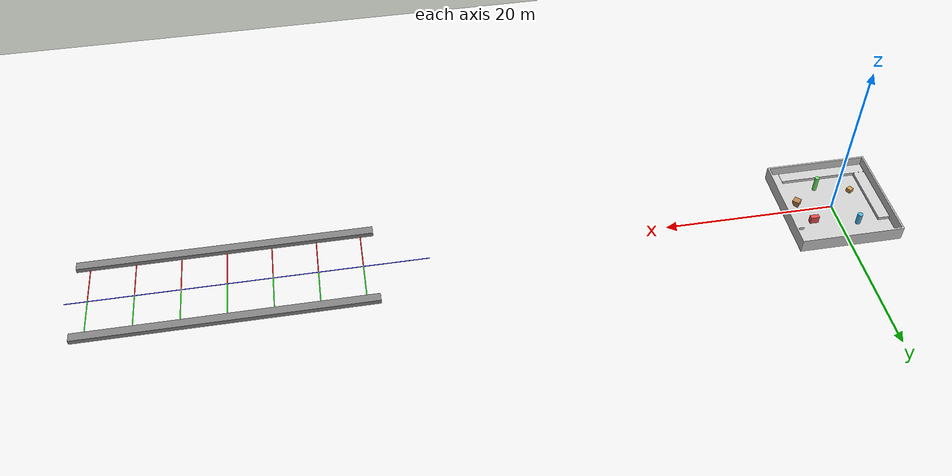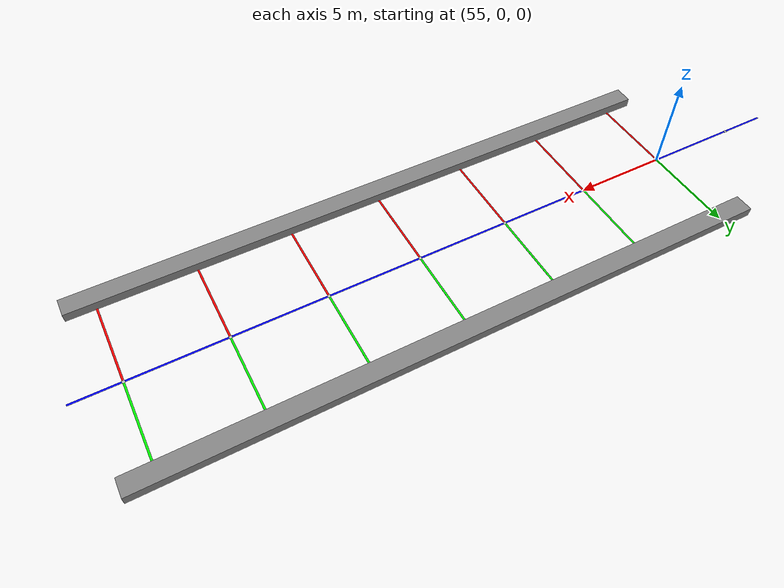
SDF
<?xml version="1.0"?>
<sdf version="1.6">
  <world name="combined_world">

    <!-- Physics -->
    <physics name="default_physics" default="0" type="ode">
      <max_step_size>0.001</max_step_size>
      <real_time_factor>1</real_time_factor>
      <real_time_update_rate>1000</real_time_update_rate>
    </physics>

    <!-- Lighting -->
    <include>
      <uri>model://sun</uri>
    </include>

    <!-- Ground Plane -->
    <model name="ground_plane">
      <static>true</static>
      <link name="link">
        <collision name="collision">
          <geometry>
            <plane>
              <normal>0 0 1</normal>
              <size>200 200</size>
            </plane>
          </geometry>
          <surface>
            <friction>
              <ode>
                <mu>100</mu>
                <mu2>50</mu2>
              </ode>
            </friction>
          </surface>
        </collision>
        <visual name="visual">
          <cast_shadows>false</cast_shadows>
          <geometry>
            <plane>
              <normal>0 0 1</normal>
              <size>200 200</size>
            </plane>
          </geometry>
          <material>
            <script>
              <uri>file://media/materials/scripts/gazebo.material</uri>
              <name>Gazebo/White</name>
            </script>
          </material>
        </visual>
      </link>
    </model>

    <!-- ELEMENTS FROM MY_ROBOT_CONTROLLER PROJECT -->
    <!-- Position: Original (around 0,0)          -->

    <!-- Warehouse Map -->
    <model name="warehouse_map">
      <static>true</static>
      <pose>0 0 0.002 0 0 0</pose>
      <link name="link">
        <collision name="collision">
          <geometry>
            <mesh>
              <uri>file:///home/wayay/mixed/src/my_robot_controller/models/my_map.stl</uri>
              <scale>1 1 1</scale>
            </mesh>
          </geometry>
        </collision>
        <visual name="visual">
          <geometry>
            <mesh>
              <uri>file:///home/wayay/mixed/src/my_robot_controller/models/my_map.stl</uri>
              <scale>1 1 1</scale>
            </mesh>
          </geometry>
          <material>
            <ambient>0.5 0.5 0.5 1.0</ambient>
            <diffuse>0.8 0.8 0.8 1.0</diffuse>
          </material>
        </visual>
      </link>
    </model>

    <!-- Obstacles from my_robot_controller -->
    <model name="obstacle_box_1">
      <static>true</static>
      <pose>3 2 0.5 0 0 0</pose>
      <link name="link">
        <collision name="collision">
          <geometry>
            <box><size>1.0 0.5 1.0</size></box>
          </geometry>
        </collision>
        <visual name="visual">
          <geometry>
            <box><size>1.0 0.5 1.0</size></box>
          </geometry>
          <material>
            <ambient>0.8 0.2 0.2 1</ambient>
            <diffuse>0.9 0.3 0.3 1</diffuse>
          </material>
        </visual>
      </link>
    </model>

    <model name="obstacle_cylinder_1">
      <static>true</static>
      <pose>-2 3 0.75 0 0 0</pose>
      <link name="link">
        <collision name="collision">
          <geometry>
            <cylinder>
              <radius>0.3</radius>
              <length>1.5</length>
            </cylinder>
          </geometry>
        </collision>
        <visual name="visual">
          <geometry>
            <cylinder>
              <radius>0.3</radius>
              <length>1.5</length>
            </cylinder>
          </geometry>
          <material>
            <ambient>0.2 0.6 0.8 1</ambient>
            <diffuse>0.3 0.7 0.9 1</diffuse>
          </material>
        </visual>
      </link>
    </model>

    <model name="obstacle_box_2">
      <static>true</static>
      <pose>-3 -2 0.3 0 0 0.5</pose>
      <link name="link">
        <collision name="collision">
          <geometry>
            <box><size>0.6 0.6 0.6</size></box>
          </geometry>
        </collision>
        <visual name="visual">
          <geometry>
            <box><size>0.6 0.6 0.6</size></box>
          </geometry>
          <material>
            <ambient>0.7 0.5 0.2 1</ambient>
            <diffuse>0.8 0.6 0.3 1</diffuse>
          </material>
        </visual>
      </link>
    </model>

    <model name="obstacle_cylinder_2">
      <static>true</static>
      <pose>1 -3 1.0 0 0 0</pose>
      <link name="link">
        <collision name="collision">
          <geometry>
            <cylinder>
              <radius>0.25</radius>
              <length>2.0</length>
            </cylinder>
          </geometry>
        </collision>
        <visual name="visual">
          <geometry>
            <cylinder>
              <radius>0.25</radius>
              <length>2.0</length>
            </cylinder>
          </geometry>
          <material>
            <ambient>0.3 0.8 0.3 1</ambient>
            <diffuse>0.4 0.9 0.4 1</diffuse>
          </material>
        </visual>
      </link>
    </model>

    <model name="obstacle_box_3">
      <static>true</static>
      <pose>4 -1 0.4 0 0 0.8</pose>
      <link name="link">
        <collision name="collision">
          <geometry>
            <box><size>0.8 0.8 0.8</size></box>
          </geometry>
        </collision>
        <visual name="visual">
          <geometry>
            <box><size>0.8 0.8 0.8</size></box>
          </geometry>
          <material>
            <ambient>0.6 0.4 0.2 1</ambient>
            <diffuse>0.7 0.5 0.3 1</diffuse>
          </material>
        </visual>
      </link>
    </model>

    <!-- ELEMENTS FROM BLUE_LINE_FOLLOWER PROJECT -->
    <!-- Position: Shifted by +50 on X axis       -->

    <!-- Blue Line Track - Straight -->
    <model name="blue_line_straight">
      <static>true</static>
      <link name="link">
        <pose>67.5 0 0.001 0 0 0</pose>
        <visual name="visual">
          <geometry>
            <box>
              <size>40 0.1 0.001</size>
            </box>
          </geometry>
          <material>
            <ambient>0 0 1 1</ambient>
            <diffuse>0 0 1 1</diffuse>
            <specular>0.1 0.1 0.3 1</specular>
            <emissive>0 0 0.5 1</emissive>
          </material>
        </visual>
      </link>
    </model>

    <!-- Delivery zones -->
    <model name="delivery_zone_left">
      <static>true</static>
      <link name="link">
        <pose>70 5 0.075 0 0 0</pose>
        <visual name="visual">
          <geometry>
            <box>
              <size>33 1 0.75</size>
            </box>
          </geometry>
          <material>
            <ambient>0.5 0.5 0.5 1</ambient>
            <diffuse>0.5 0.5 0.5 1</diffuse>
            <specular>0.2 0.2 0.2 1</specular>
          </material>
        </visual>
      </link>
    </model>

    <model name="delivery_zone_right">
      <static>true</static>
      <link name="link">
        <pose>70 -5 0.075 0 0 0</pose>
        <visual name="visual">
          <geometry>
            <box>
              <size>33 1 0.75</size>
            </box>
          </geometry>
          <material>
            <ambient>0.5 0.5 0.5 1</ambient>
            <diffuse>0.5 0.5 0.5 1</diffuse>
            <specular>0.2 0.2 0.2 1</specular>
          </material>
        </visual>
      </link>
    </model>

    <!-- Red Lines -->
    <model name="Red_1">
      <static>true</static>
      <link name="link">
        <pose>55 -2.5 0.001 0 0 1.5708</pose>
        <visual name="visual">
          <geometry>
            <box>
              <size>5 0.1 0.001</size>
            </box>
          </geometry>
          <material>
            <ambient>1 0 0 1</ambient>
            <diffuse>1 0 0 1</diffuse>
            <specular>0.3 0.1 0.1 1</specular>
            <emissive>0.5 0 0 1</emissive>
          </material>
        </visual>
      </link>
    </model>

    <model name="Red_2">
      <static>true</static>
      <link name="link">
        <pose>60 -2.5 0.001 0 0 1.5708</pose>
        <visual name="visual">
          <geometry>
            <box>
              <size>5 0.1 0.001</size>
            </box>
          </geometry>
          <material>
            <ambient>1 0 0 1</ambient>
            <diffuse>1 0 0 1</diffuse>
            <specular>0.3 0.1 0.1 1</specular>
            <emissive>0.5 0 0 1</emissive>
          </material>
        </visual>
      </link>
    </model>

    <model name="Red_3">
      <static>true</static>
      <link name="link">
        <pose>65 -2.5 0.001 0 0 1.5708</pose>
        <visual name="visual">
          <geometry>
            <box>
              <size>5 0.1 0.001</size>
            </box>
          </geometry>
          <material>
            <ambient>1 0 0 1</ambient>
            <diffuse>1 0 0 1</diffuse>
            <specular>0.3 0.1 0.1 1</specular>
            <emissive>0.5 0 0 1</emissive>
          </material>
        </visual>
      </link>
    </model>

    <model name="Red_4">
      <static>true</static>
      <link name="link">
        <pose>70 -2.5 0.001 0 0 1.5708</pose>
        <visual name="visual">
          <geometry>
            <box>
              <size>5 0.1 0.001</size>
            </box>
          </geometry>
          <material>
            <ambient>1 0 0 1</ambient>
            <diffuse>1 0 0 1</diffuse>
            <specular>0.3 0.1 0.1 1</specular>
            <emissive>0.5 0 0 1</emissive>
          </material>
        </visual>
      </link>
    </model>

    <model name="Red_5">
      <static>true</static>
      <link name="link">
        <pose>75 -2.5 0.001 0 0 1.5708</pose>
        <visual name="visual">
          <geometry>
            <box>
              <size>5 0.1 0.001</size>
            </box>
          </geometry>
          <material>
            <ambient>1 0 0 1</ambient>
            <diffuse>1 0 0 1</diffuse>
            <specular>0.3 0.1 0.1 1</specular>
            <emissive>0.5 0 0 1</emissive>
          </material>
        </visual>
      </link>
    </model>

    <model name="Red_6">
      <static>true</static>
      <link name="link">
        <pose>80 -2.5 0.001 0 0 1.5708</pose>
        <visual name="visual">
          <geometry>
            <box>
              <size>5 0.1 0.001</size>
            </box>
          </geometry>
          <material>
            <ambient>1 0 0 1</ambient>
            <diffuse>1 0 0 1</diffuse>
            <specular>0.3 0.1 0.1 1</specular>
            <emissive>0.5 0 0 1</emissive>
          </material>
        </visual>
      </link>
    </model>

    <model name="Red_7">
      <static>true</static>
      <link name="link">
        <pose>85 -2.5 0.001 0 0 1.5708</pose>
        <visual name="visual">
          <geometry>
            <box>
              <size>5 0.1 0.001</size>
            </box>
          </geometry>
          <material>
            <ambient>1 0 0 1</ambient>
            <diffuse>1 0 0 1</diffuse>
            <specular>0.3 0.1 0.1 1</specular>
            <emissive>0.5 0 0 1</emissive>
          </material>
        </visual>
      </link>
    </model>

    <!-- Green Lines -->
    <model name="Green_1">
      <static>true</static>
      <link name="link">
        <pose>55 2.5 0.001 0 0 1.5708</pose>
        <visual name="visual">
          <geometry>
            <box>
              <size>5 0.1 0.001</size>
            </box>
          </geometry>
          <material>
            <ambient>0 1 0 1</ambient>
            <diffuse>0 1 0 1</diffuse>
            <specular>0.1 0.3 0.1 1</specular>
            <emissive>0 0.5 0 1</emissive>
          </material>
        </visual>
      </link>
    </model>

    <model name="Green_2">
      <static>true</static>
      <link name="link">
        <pose>60 2.5 0.001 0 0 1.5708</pose>
        <visual name="visual">
          <geometry>
            <box>
              <size>5 0.1 0.001</size>
            </box>
          </geometry>
          <material>
            <ambient>0 1 0 1</ambient>
            <diffuse>0 1 0 1</diffuse>
            <specular>0.1 0.3 0.1 1</specular>
            <emissive>0 0.5 0 1</emissive>
          </material>
        </visual>
      </link>
    </model>

    <model name="Green_3">
      <static>true</static>
      <link name="link">
        <pose>65 2.5 0.001 0 0 1.5708</pose>
        <visual name="visual">
          <geometry>
            <box>
              <size>5 0.1 0.001</size>
            </box>
          </geometry>
          <material>
            <ambient>0 1 0 1</ambient>
            <diffuse>0 1 0 1</diffuse>
            <specular>0.1 0.3 0.1 1</specular>
            <emissive>0 0.5 0 1</emissive>
          </material>
        </visual>
      </link>
    </model>

    <model name="Green_4">
      <static>true</static>
      <link name="link">
        <pose>70 2.5 0.001 0 0 1.5708</pose>
        <visual name="visual">
          <geometry>
            <box>
              <size>5 0.1 0.001</size>
            </box>
          </geometry>
          <material>
            <ambient>0 1 0 1</ambient>
            <diffuse>0 1 0 1</diffuse>
            <specular>0.1 0.3 0.1 1</specular>
            <emissive>0 0.5 0 1</emissive>
          </material>
        </visual>
      </link>
    </model>

    <model name="Green_5">
      <static>true</static>
      <link name="link">
        <pose>75 2.5 0.001 0 0 1.5708</pose>
        <visual name="visual">
          <geometry>
            <box>
              <size>5 0.1 0.001</size>
            </box>
          </geometry>
          <material>
            <ambient>0 1 0 1</ambient>
            <diffuse>0 1 0 1</diffuse>
            <specular>0.1 0.3 0.1 1</specular>
            <emissive>0 0.5 0 1</emissive>
          </material>
        </visual>
      </link>
    </model>

    <model name="Green_6">
      <static>true</static>
      <link name="link">
        <pose>80 2.5 0.001 0 0 1.5708</pose>
        <visual name="visual">
          <geometry>
            <box>
              <size>5 0.1 0.001</size>
            </box>
          </geometry>
          <material>
            <ambient>0 1 0 1</ambient>
            <diffuse>0 1 0 1</diffuse>
            <specular>0.1 0.3 0.1 1</specular>
            <emissive>0 0.5 0 1</emissive>
          </material>
        </visual>
      </link>
    </model>

    <model name="Green_7">
      <static>true</static>
      <link name="link">
        <pose>85 2.5 0.001 0 0 1.5708</pose>
        <visual name="visual">
          <geometry>
            <box>
              <size>5 0.1 0.001</size>
            </box>
          </geometry>
          <material>
            <ambient>0 1 0 1</ambient>
            <diffuse>0 1 0 1</diffuse>
            <specular>0.1 0.3 0.1 1</specular>
            <emissive>0 0.5 0 1</emissive>
          </material>
        </visual>
      </link>
    </model>

    <!-- ArUco Markers along the track (shifted +50 on X) -->
    <model name="aruco_0">
      <static>true</static>
      <link name="link">
        <pose>50 0 0.002 0 0 0</pose>
        <visual name="visual">
          <geometry>
            <box>
              <size>0.15 0.15 0.001</size>
            </box>
          </geometry>
          <material>
            <script>
              <uri>model://aruco_0/materials/scripts</uri>
              <uri>model://aruco_0/materials/textures</uri>
              <name>aruco_0</name>
            </script>
          </material>
        </visual>
      </link>
    </model>

    <model name="aruco_1">
      <static>true</static>
      <link name="link">
        <pose>55 0 0.002 0 0 0</pose>
        <visual name="visual">
          <geometry>
            <box>
              <size>0.15 0.15 0.001</size>
            </box>
          </geometry>
          <material>
            <script>
              <uri>model://aruco_1/materials/scripts</uri>
              <uri>model://aruco_1/materials/textures</uri>
              <name>aruco_1</name>
            </script>
          </material>
        </visual>
      </link>
    </model>

    <model name="aruco_2">
      <static>true</static>
      <link name="link">
        <pose>60 0 0.002 0 0 0</pose>
        <visual name="visual">
          <geometry>
            <box>
              <size>0.15 0.15 0.001</size>
            </box>
          </geometry>
          <material>
            <script>
              <uri>model://aruco_2/materials/scripts</uri>
              <uri>model://aruco_2/materials/textures</uri>
              <name>aruco_2</name>
            </script>
          </material>
        </visual>
      </link>
    </model>

    <model name="aruco_3">
      <static>true</static>
      <link name="link">
        <pose>65 0 0.002 0 0 0</pose>
        <visual name="visual">
          <geometry>
            <box>
              <size>0.15 0.15 0.001</size>
            </box>
          </geometry>
          <material>
            <script>
              <uri>model://aruco_3/materials/scripts</uri>
              <uri>model://aruco_3/materials/textures</uri>
              <name>aruco_3</name>
            </script>
          </material>
        </visual>
      </link>
    </model>

    <model name="aruco_4">
      <static>true</static>
      <link name="link">
        <pose>70 0 0.002 0 0 3.14159</pose>
        <visual name="visual">
          <geometry>
            <box>
              <size>0.15 0.15 0.001</size>
            </box>
          </geometry>
          <material>
            <script>
              <uri>model://aruco_4/materials/scripts</uri>
              <uri>model://aruco_4/materials/textures</uri>
              <name>aruco_4</name>
            </script>
          </material>
        </visual>
      </link>
    </model>

    <model name="aruco_5">
      <static>true</static>
      <link name="link">
        <pose>75 0 0.002 0 0 3.14159</pose>
        <visual name="visual">
          <geometry>
            <box>
              <size>0.15 0.15 0.001</size>
            </box>
          </geometry>
          <material>
            <script>
              <uri>model://aruco_5/materials/scripts</uri>
              <uri>model://aruco_5/materials/textures</uri>
              <name>aruco_5</name>
            </script>
          </material>
        </visual>
      </link>
    </model>

    <model name="aruco_6">
      <static>true</static>
      <link name="link">
        <pose>80 0 0.002 0 0 3.14159</pose>
        <visual name="visual">
          <geometry>
            <box>
              <size>0.15 0.15 0.001</size>
            </box>
          </geometry>
          <material>
            <script>
              <uri>model://aruco_6/materials/scripts</uri>
              <uri>model://aruco_6/materials/textures</uri>
              <name>aruco_6</name>
            </script>
          </material>
        </visual>
      </link>
    </model>

    <model name="aruco_7">
      <static>true</static>
      <link name="link">
        <pose>85 0 0.002 0 0 3.14159</pose>
        <visual name="visual">
          <geometry>
            <box>
              <size>0.15 0.15 0.001</size>
            </box>
          </geometry>
          <material>
            <script>
              <uri>model://aruco_7/materials/scripts</uri>
              <uri>model://aruco_7/materials/textures</uri>
              <name>aruco_7</name>
            </script>
          </material>
        </visual>
      </link>
    </model>

    <!-- Scene -->
    <scene>
      <ambient>0.4 0.4 0.4 1</ambient>
      <background>0.7 0.7 0.7 1</background>
      <shadows>true</shadows>
    </scene>

    <!-- GUI -->
    <gui fullscreen='0'>
      <camera name='user_camera'>
        <pose>40 -30 25 0 0.5 1.2</pose>
        <view_controller>orbit</view_controller>
      </camera>
    </gui>

  </world>
</sdf>
